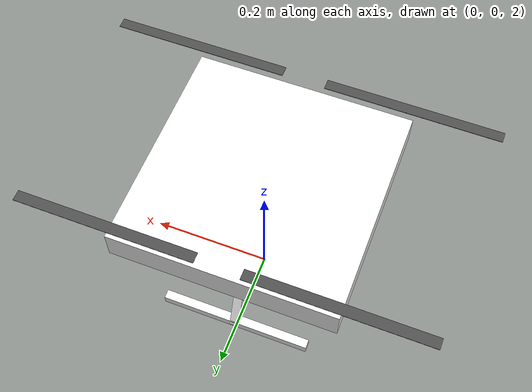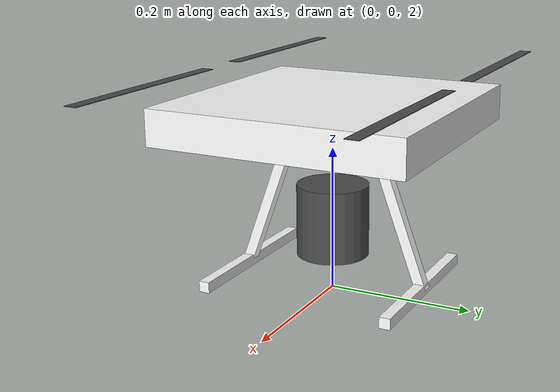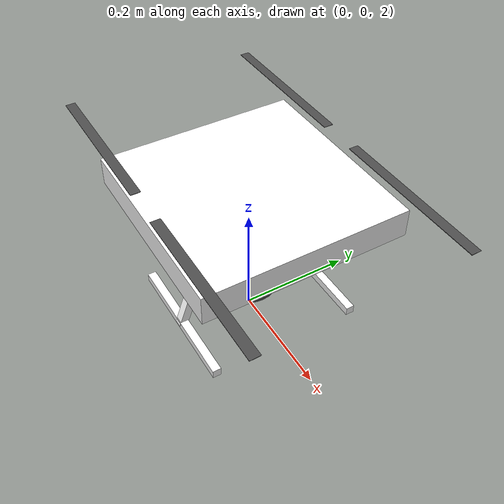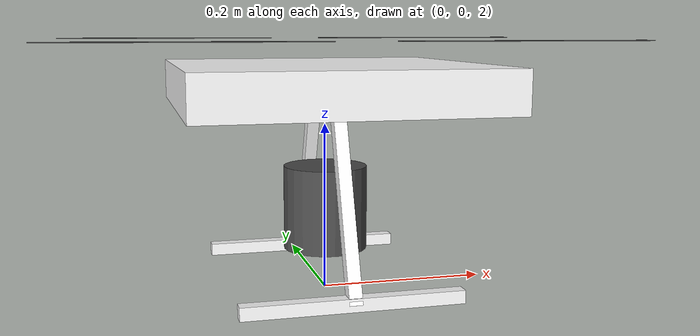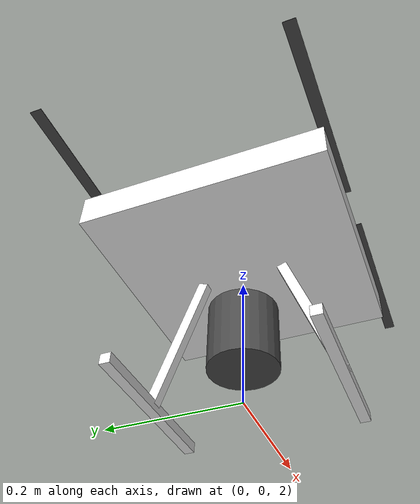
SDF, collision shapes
<?xml version="1.0" encoding="UTF-8"?>
<sdf version='1.9'>
  <model name='x500_base'>
    <pose>0 0 2.24 0 0 0</pose>
    <self_collide>false</self_collide>
    <static>false</static>
    <link name="base_link">
      <inertial>
        <mass>2.0</mass>
        <inertia>
          <ixx>0.02166666666666667</ixx>
          <ixy>0</ixy>
          <ixz>0</ixz>
          <iyy>0.02166666666666667</iyy>
          <iyz>0</iyz>
          <izz>0.04000000000000001</izz>
        </inertia>
      </inertial>
      <gravity>true</gravity>
      <enable_wind>true</enable_wind>
      <velocity_decay/>
      <visual name="base_link_visual">
        <pose>0 0 .025 0 0 3.141592654</pose>
        <geometry>
          <mesh>
            <scale>1 1 1</scale>
            <uri>model://x500_base/meshes/NXP-HGD-CF.dae</uri>
          </mesh>
        </geometry>
      </visual>
      <visual name="5010_motor_base_0">
        <pose>0.174 0.174 .032 0 0 -.45</pose>
        <geometry>
          <mesh>
            <scale>1 1 1</scale>
            <uri>model://x500_base/meshes/5010Base.dae</uri>
          </mesh>
        </geometry>
      </visual>
      <visual name="5010_motor_base_1">
        <pose>-0.174 0.174 .032 0 0 -.45</pose>
        <geometry>
          <mesh>
            <scale>1 1 1</scale>
            <uri>model://x500_base/meshes/5010Base.dae</uri>
          </mesh>
        </geometry>
      </visual>
      <visual name="5010_motor_base_2">
        <pose>0.174 -0.174 .032 0 0 -.45</pose>
        <geometry>
          <mesh>
            <scale>1 1 1</scale>
            <uri>model://x500_base/meshes/5010Base.dae</uri>
          </mesh>
        </geometry>
      </visual>
      <visual name="5010_motor_base_3">
        <pose>-0.174 -0.174 .032 0 0 -.45</pose>
        <geometry>
          <mesh>
            <scale>1 1 1</scale>
            <uri>model://x500_base/meshes/5010Base.dae</uri>
          </mesh>
        </geometry>
      </visual>
      <visual name="NXP_FMUK66_FRONT">
        <pose>0.047 .001 .043 1 0 1.57</pose>
        <cast_shadows>false</cast_shadows>
        <geometry>
          <plane>
            <normal>0 0 1</normal>
            <size>.013 .007</size>
          </plane>
        </geometry>
        <material>
          <diffuse>1.0 1.0 1.0</diffuse>
          <specular>1.0 1.0 1.0</specular>
          <pbr>
            <metal>
              <albedo_map>model://x500_base/materials/textures/nxp.png</albedo_map>
            </metal>
          </pbr>
        </material>
      </visual>
      <visual name="NXP_FMUK66_TOP">
        <pose>-0.023 0 .0515 0 0 -1.57</pose>
        <cast_shadows>false</cast_shadows>
        <geometry>
          <plane>
            <normal>0 0 1</normal>
            <size>.013 .007</size>
          </plane>
        </geometry>
        <material>
          <diffuse>1.0 1.0 1.0</diffuse>
          <specular>1.0 1.0 1.0</specular>
          <pbr>
            <metal>
              <albedo_map>model://x500_base/materials/textures/nxp.png</albedo_map>
            </metal>
          </pbr>
        </material>
      </visual>
      <visual name="RDDRONE_FMUK66_TOP">
        <pose>-.03 0 .0515 0 0 -1.57</pose>
        <cast_shadows>false</cast_shadows>
        <geometry>
          <plane>
            <normal>0 0 1</normal>
            <size>.032 .0034</size>
          </plane>
        </geometry>
        <material>
          <diffuse>1.0 1.0 1.0</diffuse>
          <specular>1.0 1.0 1.0</specular>
          <pbr>
            <metal>
              <albedo_map>model://x500_base/materials/textures/rd.png</albedo_map>
            </metal>
          </pbr>
        </material>
      </visual>
      <collision name="base_link_collision_0">
        <pose>0 0 .007 0 0 0</pose>
        <geometry>
          <box>
            <size>0.35355339059327373 0.35355339059327373 0.05</size>
          </box>
        </geometry>
        <surface>
          <contact>
            <ode>
              <min_depth>0.001</min_depth>
              <max_vel>0</max_vel>
            </ode>
          </contact>
          <friction>
            <ode/>
          </friction>
        </surface>
      </collision>
      <collision name="base_link_collision_1">
        <pose>0 -0.098 -.123 -0.35 0 0</pose>
        <geometry>
          <box>
            <size>0.015 0.015 0.21</size>
          </box>
        </geometry>
        <surface>
          <contact>
            <ode>
              <min_depth>0.001</min_depth>
              <max_vel>0</max_vel>
            </ode>
          </contact>
          <friction>
            <ode/>
          </friction>
        </surface>
      </collision>
      <collision name="base_link_collision_2">
        <pose>0 0.098 -.123 0.35 0 0</pose>
        <geometry>
          <box>
            <size>0.015 0.015 0.21</size>
          </box>
        </geometry>
        <surface>
          <contact>
            <ode>
              <min_depth>0.001</min_depth>
              <max_vel>0</max_vel>
            </ode>
          </contact>
          <friction>
            <ode/>
          </friction>
        </surface>
      </collision>
      <collision name="base_link_collision_3">
        <pose>0 -0.132 -.2195 0 0 0</pose>
        <geometry>
          <box>
            <size>0.25 0.015 0.015</size>
          </box>
        </geometry>
        <surface>
          <contact>
            <ode>
              <min_depth>0.001</min_depth>
              <max_vel>0</max_vel>
            </ode>
          </contact>
          <friction>
            <ode/>
          </friction>
        </surface>
      </collision>
      <collision name="base_link_collision_4">
        <pose>0 0.132 -.2195 0 0 0</pose>
        <geometry>
          <box>
            <size>0.25 0.015 0.015</size>
          </box>
        </geometry>
        <surface>
          <contact>
            <ode>
              <min_depth>0.001</min_depth>
              <max_vel>0</max_vel>
            </ode>
          </contact>
          <friction>
            <ode/>
          </friction>
        </surface>
      </collision>
      <sensor name="air_pressure_sensor" type="air_pressure">
        <always_on>1</always_on>
        <update_rate>50</update_rate>
        <air_pressure>
          <pressure>
            <noise type="gaussian">
              <mean>0</mean>
              <stddev>0.01</stddev>
            </noise>
          </pressure>
        </air_pressure>
      </sensor>
      <sensor name="imu_sensor" type="imu">
        <always_on>1</always_on>
        <update_rate>250</update_rate>
        <imu>
          <angular_velocity>
            <x>
              <noise type="gaussian">
                <mean>0</mean>
                <stddev>0.00018665</stddev>
                <dynamic_bias_stddev>3.8785e-05</dynamic_bias_stddev>
                <dynamic_bias_correlation_time>1000</dynamic_bias_correlation_time>
              </noise>
            </x>
            <y>
              <noise type="gaussian">
                <mean>0</mean>
                <stddev>0.00018665</stddev>
                <dynamic_bias_stddev>3.8785e-05</dynamic_bias_stddev>
                <dynamic_bias_correlation_time>1000</dynamic_bias_correlation_time>
              </noise>
            </y>
            <z>
              <noise type="gaussian">
                <mean>0</mean>
                <stddev>0.00018665</stddev>
                <dynamic_bias_stddev>3.8785e-05</dynamic_bias_stddev>
                <dynamic_bias_correlation_time>1000</dynamic_bias_correlation_time>
              </noise>
            </z>
          </angular_velocity>
          <linear_acceleration>
            <x>
              <noise type="gaussian">
                <mean>0</mean>
                <stddev>0.00186</stddev>
                <dynamic_bias_stddev>0.006</dynamic_bias_stddev>
                <dynamic_bias_correlation_time>300</dynamic_bias_correlation_time>
              </noise>
            </x>
            <y>
              <noise type="gaussian">
                <mean>0</mean>
                <stddev>0.00186</stddev>
                <dynamic_bias_stddev>0.006</dynamic_bias_stddev>
                <dynamic_bias_correlation_time>300</dynamic_bias_correlation_time>
              </noise>
            </y>
            <z>
              <noise type="gaussian">
                <mean>0</mean>
                <stddev>0.00186</stddev>
                <dynamic_bias_stddev>0.006</dynamic_bias_stddev>
                <dynamic_bias_correlation_time>300</dynamic_bias_correlation_time>
              </noise>
            </z>
          </linear_acceleration>
        </imu>
      </sensor>
      <sensor name="navsat_sensor" type="navsat">
        <always_on>1</always_on>
        <update_rate>30</update_rate>
      </sensor>
    </link>
    <link name="rotor_0">
      <gravity>true</gravity>
      <self_collide>false</self_collide>
      <velocity_decay/>
      <pose>0.174 -0.174 0.06 0 0 0</pose>
      <inertial>
          <mass>0.016076923076923075</mass>
          <inertia>
            <ixx>3.8464910483993325e-07</ixx>
            <iyy>2.6115851691700804e-05</iyy>
            <izz>2.649858234714004e-05</izz>
          </inertia>
        </inertial>
      <visual name="rotor_0_visual">
        <pose>-0.022 -0.14638461538461536 -0.016 0 0 0</pose>
        <geometry>
          <mesh>
            <scale>0.8461538461538461 0.8461538461538461 0.8461538461538461</scale>
            <uri>model://x500_base/meshes/1345_prop_ccw.stl</uri>
          </mesh>
        </geometry>
        <material>
          <script>
            <name>Gazebo/DarkGrey</name>
            <uri>file://media/materials/scripts/gazebo.material</uri>
          </script>
        </material>
      </visual>
      <visual name="rotor_0_visual_motor_bell">
        <pose>0 0 -.032 0 0 0</pose>
        <geometry>
          <mesh>
            <scale>1 1 1</scale>
            <uri>model://x500_base/meshes/5010Bell.dae</uri>
          </mesh>
        </geometry>
      </visual>
      <collision name="rotor_0_collision">
        <pose>0 0 0 0 0 0 </pose>
        <geometry>
          <box>
            <size>0.2792307692307692 0.016923076923076923 0.0008461538461538462</size>
          </box>
        </geometry>
        <surface>
          <contact>
            <ode>
              <min_depth>0.001</min_depth>
              <max_vel>0</max_vel>
            </ode>
          </contact>
          <friction>
            <ode/>
          </friction>
        </surface>
      </collision>
    </link>
    <joint name="rotor_0_joint" type="revolute">
      <parent>base_link</parent>
      <child>rotor_0</child>
      <axis>
        <xyz>0 0 1</xyz>
        <limit>
          <lower>-1e+16</lower>
          <upper>1e+16</upper>
        </limit>
        <dynamics>
          <spring_reference>0</spring_reference>
          <spring_stiffness>0</spring_stiffness>
        </dynamics>
      </axis>
    </joint>
    <link name="rotor_1">
      <gravity>true</gravity>
      <self_collide>false</self_collide>
      <velocity_decay/>
      <pose>-0.174 0.174 0.06 0 0 0</pose>
      <inertial>
          <mass>0.016076923076923075</mass>
          <inertia>
            <ixx>3.8464910483993325e-07</ixx>
            <iyy>2.6115851691700804e-05</iyy>
            <izz>2.649858234714004e-05</izz>
          </inertia>
        </inertial>
      <visual name="rotor_1_visual">
        <pose>-0.022 -0.14638461538461536 -0.016 0 0 0</pose>
        <geometry>
          <mesh>
            <scale>0.8461538461538461 0.8461538461538461 0.8461538461538461</scale>
            <uri>model://x500_base/meshes/1345_prop_ccw.stl</uri>
          </mesh>
        </geometry>
        <material>
          <script>
            <name>Gazebo/DarkGrey</name>
            <uri>file://media/materials/scripts/gazebo.material</uri>
          </script>
        </material>
      </visual>
      <visual name="rotor_1_visual_motor_top">
        <pose>0 0 -.032 0 0 0</pose>
        <geometry>
          <mesh>
            <scale>1 1 1</scale>
            <uri>model://x500_base/meshes/5010Bell.dae</uri>
          </mesh>
        </geometry>
      </visual>
      <collision name="rotor_1_collision">
        <pose>0 0 0 0 0 0 </pose>
        <geometry>
          <box>
            <size>0.2792307692307692 0.016923076923076923 0.0008461538461538462</size>
          </box>
        </geometry>
        <surface>
          <contact>
            <ode>
              <min_depth>0.001</min_depth>
              <max_vel>0</max_vel>
            </ode>
          </contact>
          <friction>
            <ode/>
          </friction>
        </surface>
      </collision>
    </link>
    <joint name="rotor_1_joint" type="revolute">
      <parent>base_link</parent>
      <child>rotor_1</child>
      <axis>
        <xyz>0 0 1</xyz>
        <limit>
          <lower>-1e+16</lower>
          <upper>1e+16</upper>
        </limit>
        <dynamics>
          <spring_reference>0</spring_reference>
          <spring_stiffness>0</spring_stiffness>
        </dynamics>
      </axis>
    </joint>
    <link name="rotor_2">
      <gravity>true</gravity>
      <self_collide>false</self_collide>
      <velocity_decay/>
      <pose>0.174 0.174 0.06 0 0 0</pose>
      <inertial>
          <mass>0.016076923076923075</mass>
          <inertia>
            <ixx>3.8464910483993325e-07</ixx>
            <iyy>2.6115851691700804e-05</iyy>
            <izz>2.649858234714004e-05</izz>
          </inertia>
        </inertial>
      <visual name="rotor_2_visual">
        <pose>-0.022 -0.14638461538461536 -0.016 0 0 0</pose>
        <geometry>
          <mesh>
            <scale>0.8461538461538461 0.8461538461538461 0.8461538461538461</scale>
            <uri>model://x500_base/meshes/1345_prop_cw.stl</uri>
          </mesh>
        </geometry>
        <material>
          <script>
            <name>Gazebo/DarkGrey</name>
            <uri>file://media/materials/scripts/gazebo.material</uri>
          </script>
        </material>
      </visual>
      <visual name="rotor_2_visual_motor_top">
        <pose>0 0 -.032 0 0 0</pose>
        <geometry>
          <mesh>
            <scale>1 1 1</scale>
            <uri>model://x500_base/meshes/5010Bell.dae</uri>
          </mesh>
        </geometry>
      </visual>
      <collision name="rotor_2_collision">
        <pose>0 0 0 0 0 0 </pose>
        <geometry>
          <box>
            <size>0.2792307692307692 0.016923076923076923 0.0008461538461538462</size>
          </box>
        </geometry>
        <surface>
          <contact>
            <ode>
              <min_depth>0.001</min_depth>
              <max_vel>0</max_vel>
            </ode>
          </contact>
          <friction>
            <ode/>
          </friction>
        </surface>
      </collision>
    </link>
    <joint name="rotor_2_joint" type="revolute">
      <parent>base_link</parent>
      <child>rotor_2</child>
      <axis>
        <xyz>0 0 1</xyz>
        <limit>
          <lower>-1e+16</lower>
          <upper>1e+16</upper>
        </limit>
        <dynamics>
          <spring_reference>0</spring_reference>
          <spring_stiffness>0</spring_stiffness>
        </dynamics>
      </axis>
    </joint>
    <link name="rotor_3">
      <gravity>true</gravity>
      <self_collide>false</self_collide>
      <velocity_decay/>
      <pose>-0.174 -0.174 0.06 0 0 0</pose>
      <inertial>
          <mass>0.016076923076923075</mass>
          <inertia>
            <ixx>3.8464910483993325e-07</ixx>
            <iyy>2.6115851691700804e-05</iyy>
            <izz>2.649858234714004e-05</izz>
          </inertia>
        </inertial>
      <visual name="rotor_3_visual">
        <pose>-0.022 -0.14638461538461536 -0.016 0 0 0</pose>
        <geometry>
          <mesh>
            <scale>0.8461538461538461 0.8461538461538461 0.8461538461538461</scale>
            <uri>model://x500_base/meshes/1345_prop_cw.stl</uri>
          </mesh>
        </geometry>
        <material>
          <script>
            <name>Gazebo/DarkGrey</name>
            <uri>file://media/materials/scripts/gazebo.material</uri>
          </script>
        </material>
      </visual>
      <visual name="rotor_3_visual_motor_top">
        <pose>0 0 -.032 0 0 0</pose>
        <geometry>
          <mesh>
            <scale>1 1 1</scale>
            <uri>model://x500_base/meshes/5010Bell.dae</uri>
          </mesh>
        </geometry>
      </visual>
      <collision name="rotor_3_collision">
        <pose>0 0 0 0 0 0 </pose>
        <geometry>
          <box>
            <size>0.2792307692307692 0.016923076923076923 0.0008461538461538462</size>
          </box>
        </geometry>
        <surface>
          <contact>
            <ode>
              <min_depth>0.001</min_depth>
              <max_vel>0</max_vel>
            </ode>
          </contact>
          <friction>
            <ode/>
          </friction>
        </surface>
      </collision>
    </link>
    <joint name="rotor_3_joint" type="revolute">
      <parent>base_link</parent>
      <child>rotor_3</child>
      <axis>
        <xyz>0 0 1</xyz>
        <limit>
          <lower>-1e+16</lower>
          <upper>1e+16</upper>
        </limit>
        <dynamics>
          <spring_reference>0</spring_reference>
          <spring_stiffness>0</spring_stiffness>
        </dynamics>
      </axis>
    </joint>

<link name="stand">
  <pose>0 0 -0.14 0 0 0</pose> <!-- Adjust position under the drone -->
  <visual name="stand_visual">
    <geometry>
      <cylinder>
        <radius>0.05</radius> <!-- Radius of the cylinder -->
        <length>0.1</length> <!-- Height of the cylinder -->
      </cylinder>
    </geometry>
    <material>
      <ambient>0.3 0.3 0.3 1</ambient>
      <diffuse>0.3 0.3 0.3 1</diffuse>
    </material>
  </visual>
  <collision name="stand_collision">
    <geometry>
      <cylinder>
        <radius>0.05</radius> <!-- Match the visual radius -->
        <length>0.1</length> <!-- Match the visual height -->
      </cylinder>
    </geometry>
  </collision>
</link>

<joint name="stand_to_world_joint" type="fixed">
  <parent>world</parent> <!-- Stand is anchored to the world -->
  <child>stand</child>   <!-- The stand link -->
</joint>
<joint name="drone_to_world_joint" type="ball">
  <parent>world</parent> <!-- Attach directly to the world -->
  <child>base_link</child> <!-- The drone's base -->
</joint>

  </model>
</sdf>
